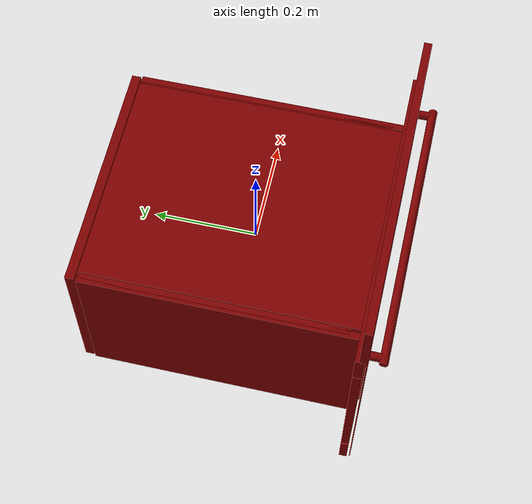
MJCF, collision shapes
<mujoco model="model">
  <compiler angle="radian"/>
  <asset>
    <mesh file="visuals/Body001.obj" name="Body001_vis"/>
    <mesh file="visuals/Door001.obj" name="Door001_vis"/>
    <mesh file="visuals/Door001_Clear.obj" name="Door001_Clear_vis"/>
    <mesh file="visuals/Shelf001.obj" name="Shelf001_vis"/>
    <mesh file="visuals/Shelf002.obj" name="Shelf002_vis"/>
    <texture file="visuals/T_BC001.png" name="Body001_material" type="2d"/>
    <material name="Body001_material" rgba="1 1 1 1.0" texture="Body001_material" shininess="0.5" specular="0.3103448502657381"/>
    <texture file="visuals/T_BC001.png" name="Door001_material" type="2d"/>
    <material name="Door001_material" rgba="1 1 1 1.0" texture="Door001_material" shininess="0.5" specular="0.3103448502657381"/>
    <texture file="visuals/T_BC001.png" name="Door001_Clear_material" type="2d"/>
    <material name="Door001_Clear_material" rgba="1 1 1 0.800000011920929" texture="Door001_Clear_material" shininess="0.5" specular="0.3103448502657381"/>
    <texture file="visuals/T_BC001.png" name="Shelf001_material" type="2d"/>
    <material name="Shelf001_material" rgba="1 1 1 1.0" texture="Shelf001_material" shininess="0.5" specular="0.3103448502657381"/>
    <texture file="visuals/T_BC001.png" name="Shelf002_material" type="2d"/>
    <material name="Shelf002_material" rgba="1 1 1 1.0" texture="Shelf002_material" shininess="0.5" specular="0.3103448502657381"/>
  </asset>
  <default>
    <default class="visual">
      <geom conaffinity="0" contype="0" group="1" type="mesh"/>
    </default>
    <default class="collision">
      <geom group="0" rgba="0.5 0 0 0.5"/>
    </default>
    <default class="spawn">
      <geom group="0" rgba="1 1 1 0.5" contype="0" conaffinity="0"/>
      <site group="0" rgba="1 1 1 0.5"/>
    </default>
    <default class="region">
      <geom group="1" conaffinity="0" contype="0" rgba="0 1 0 0"/>
    </default>
  </default>
  <worldbody>
    <body>
      <body name="object">
        <geom mesh="Body001_vis" type="mesh" solimp="0.998 0.998 0.001" solref="0.001 1" density="100" friction="0.95 0.3 0.1" class="visual" material="Body001_material"/>
        <geom class="collision" type="box" pos="0.004257142543792725 0.2943509817123413 -0.0529102087020874" size="0.22952304780483246 0.008945335634052753 0.16595187783241272" quat="1.0 0.0 0.0 0.0"/>
        <geom class="collision" type="box" pos="0.2300356924533844 0.017854757606983185 -0.0529102087020874" size="0.006362761836498976 0.2641582190990448 0.16595187783241272" quat="1.0 0.0 0.0 0.0"/>
        <geom class="collision" type="box" pos="-0.22169561684131622 0.017854759469628334 -0.0529102087020874" size="0.006796667817980051 0.2641582190990448 0.16595187783241272" quat="1.0 0.0 0.0 0.0"/>
        <geom class="collision" type="box" pos="0.003983635921031237 0.018849823623895645 0.10499690473079681" size="0.21423636376857758 0.2641598880290985 0.011419011279940605" quat="1.0 0.0 0.0 0.0"/>
        <geom class="collision" type="box" pos="0.0033500618301331997 0.026806090027093887 -0.22481036186218262" size="0.22138787806034088 0.272116094827652 0.008946197107434273" quat="1.0 0.0 0.0 0.0"/>
        <geom class="collision" type="box" pos="2.8462620704772235e-08 -0.2542492747306824 0.2345203161239624" size="0.2994057536125183 0.0074152639135718346 0.05844840779900551" quat="1.0 0.0 0.0 0.0"/>
        <geom class="collision" type="box" pos="3.04707867826437e-08 -0.2471369355916977 0.14411506056785583" size="0.2994057536125183 0.0077019804157316685 0.033569641411304474" quat="1.0 0.0 0.0 0.0"/>
        <geom class="collision" type="box" pos="-3.902916745346374e-08 -0.2471369355916977 -0.2575114369392395" size="0.2994057536125183 0.007701977621763945 0.033569641411304474" quat="1.0 0.0 0.0 0.0"/>
        <geom class="collision" type="box" pos="0.2643807530403137 -0.2471369355916977 -0.057232510298490524" size="0.035025034099817276 0.007701974827796221 0.16634026169776917" quat="1.0 0.0 0.0 0.0"/>
        <geom class="collision" type="box" pos="-0.25912341475486755 -0.2471369355916977 -0.057232510298490524" size="0.03709207475185394 0.007701972499489784 0.16634026169776917" quat="1.0 0.0 0.0 0.0"/>
        <geom class="collision" type="box" pos="-0.20666499435901642 0.030717499554157257 -0.0529102087020874" size="0.015208982862532139 0.2500506341457367 0.16595187783241272" quat="1.0 0.0 0.0 0.0"/>
        <geom class="collision" type="box" pos="0.21232764422893524 0.030717499554157257 -0.0529102087020874" size="0.015208982862532139 0.2500506341457367 0.16595187783241272" quat="1.0 0.0 0.0 0.0"/>
        <body name="Door001">
          <joint axis="1.0 0.0 0.0" pos="4.842877388000488e-08 -0.2616780996322632 -0.29297778010368347" limited="true" name="Door001_joint" range="0.0 1.15" type="hinge" damping="5" frictionloss="1" armature=".01" stiffness="0.05" springref="-1"/>
          <geom mesh="Door001_vis" type="mesh" solimp="0.998 0.998 0.001" solref="0.001 1" density="100" friction="0.95 0.3 0.1" class="visual" material="Door001_material"/>
          <geom class="collision" type="box" pos="0.0003371572820469737 -0.26061785221099854 -0.06075669825077057" size="0.2993898391723633 0.0010464511578902602 0.22566035389900208" quat="1.0 0.0 0.0 0.0"/>
          <geom class="collision" type="cylinder" pos="0.001624423312023282 -0.28852972388267517 0.12220831215381622" size="0.008250067941844463 0.27126771211624146" quat="0.7071068286895752 1.2101618374060763e-08 0.7071067690849304 -1.2101617485882343e-08"/>
          <geom class="collision" type="cylinder" pos="0.26123130321502686 -0.2731483578681946 0.12220831215381622" size="0.008250067941844463 0.010755577124655247" quat="0.5 0.5 0.4999999701976776 -0.5"/>
          <geom class="collision" type="cylinder" pos="-0.2576301097869873 -0.2731483578681946 0.12220831215381622" size="0.008250067941844463 0.010755577124655247" quat="0.5 0.5 0.4999999701976776 -0.5"/>
          <body name="Door001_Clear">
            <geom mesh="Door001_Clear_vis" type="mesh" solimp="0.998 0.998 0.001" solref="0.001 1" density="100" friction="0.95 0.3 0.1" class="visual" material="Door001_Clear_material"/>
            <geom class="collision" type="box" pos="0.0003371572820469737 -0.256588339805603 -0.06384003907442093" size="0.2099902182817459 0.0012809786712750793 0.13924762606620789" quat="1.0 0.0 0.0 0.0"/>
          </body>
        </body>
        <body name="Shelf001">
          <joint axis="0.0 -1.0 0.0" pos="0.003203470027074218 -0.021509557962417603 -0.019469374790787697" limited="true" name="Shelf001_joint" range="0.0 0.3" type="slide" damping="1" frictionloss="1" armature=".01" stiffness="0.05"/>
          <geom mesh="Shelf001_vis" type="mesh" solimp="0.998 0.998 0.001" solref="0.001 1" density="100" friction="0.95 0.3 0.1" class="visual" material="Shelf001_material"/>
          <geom class="collision" type="box" pos="0.003064877586439252 -0.019534630700945854 -0.02112586423754692" size="0.19316810369491577 0.14750193059444427 0.0054052239283919334" quat="1.0 0.0 0.0 0.0"/>
        </body>
        <body name="Shelf002">
          <joint axis="0.0 -1.0 0.0" pos="0.003203470027074218 -0.021509557962417603 -0.08028571307659149" limited="true" name="Shelf002_joint" range="0.0 0.3" type="slide" damping="1" frictionloss="1" armature=".01" stiffness="0.05"/>
          <geom mesh="Shelf002_vis" type="mesh" solimp="0.998 0.998 0.001" solref="0.001 1" density="100" friction="0.95 0.3 0.1" class="visual" material="Shelf002_material"/>
          <geom class="collision" type="box" pos="0.003064877586439252 -0.019534630700945854 -0.08193520456552505" size="0.19316811859607697 0.14750196039676666 0.00583091052249074" quat="1.0 0.0 0.0 0.0"/>
        </body>
        <geom class="region" name="reg_main" type="box" pos="0.0 0.01797104999423027 0.0" size="0.2994058132171631 0.27963533997535706 0.29296907782554626"/>
        <geom class="region" name="reg_int" type="box" pos="0.003178521990776062 0.027887441217899323 -0.055313508957624435" size="0.22109824419021606 0.2668905481696129 0.1596982218325138"/>
      </body>
    </body>
  </worldbody>
  <actuator>
    <motor name="Door001_joint_actuator" joint="Door001_joint" gear="20"/>
    <motor name="Shelf001_joint_actuator" joint="Shelf001_joint" gear="10"/>
    <motor name="Shelf002_joint_actuator" joint="Shelf002_joint" gear="10"/>
  </actuator>
</mujoco>
